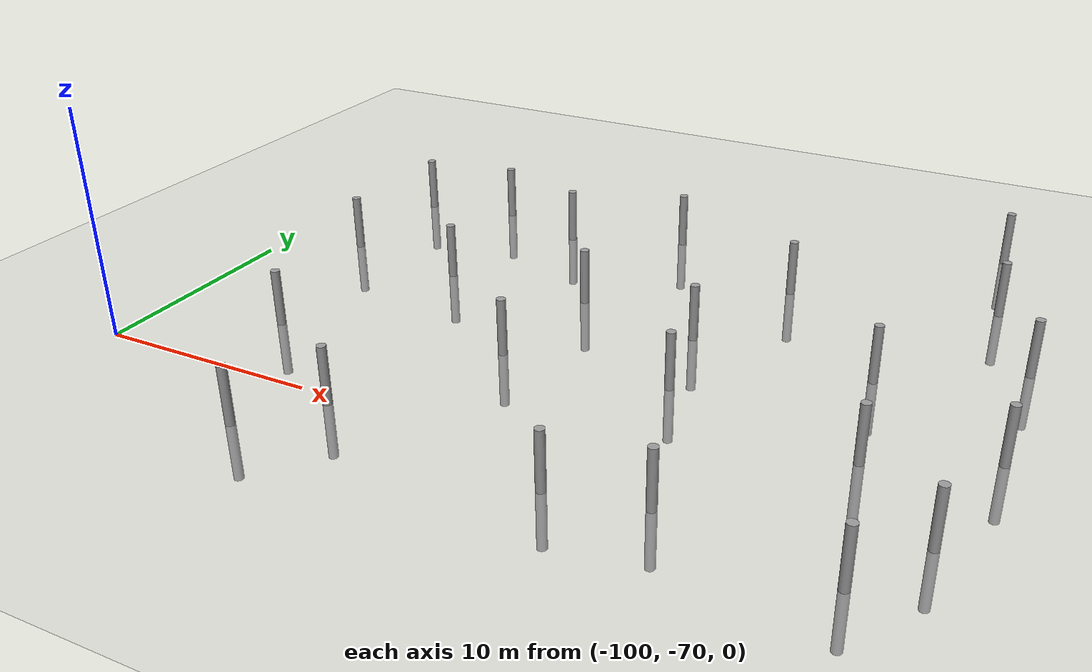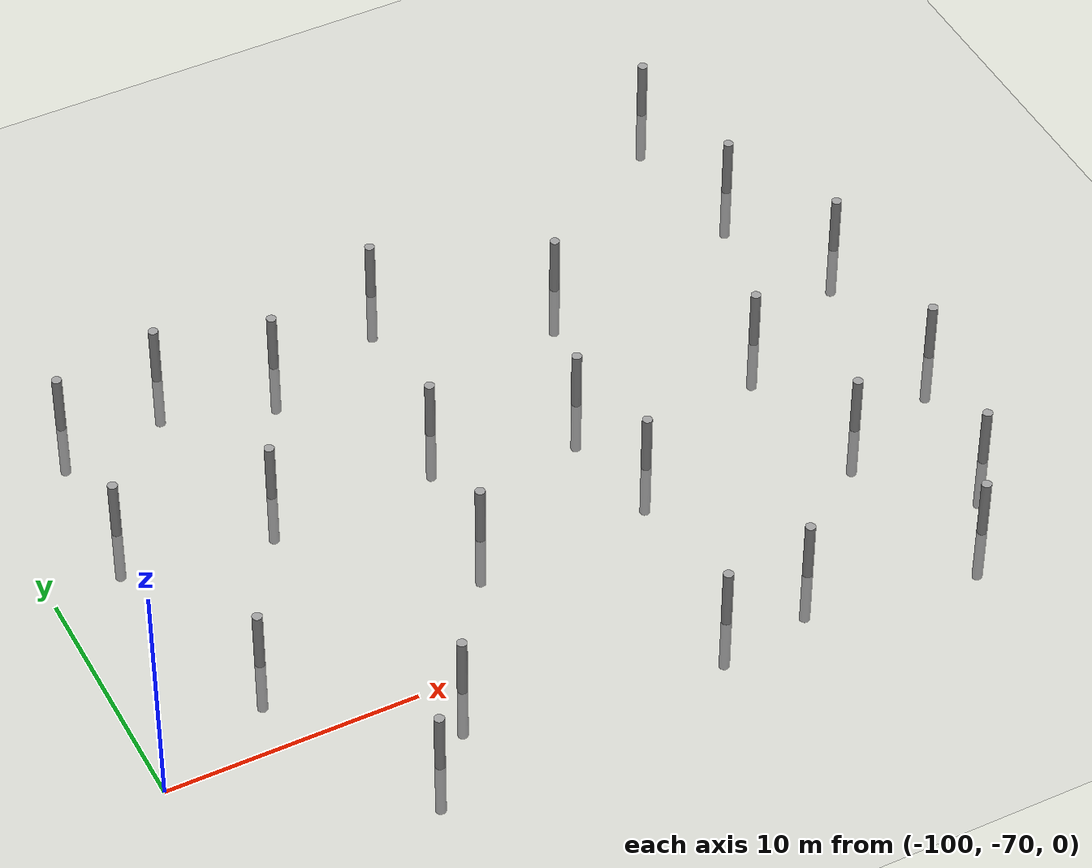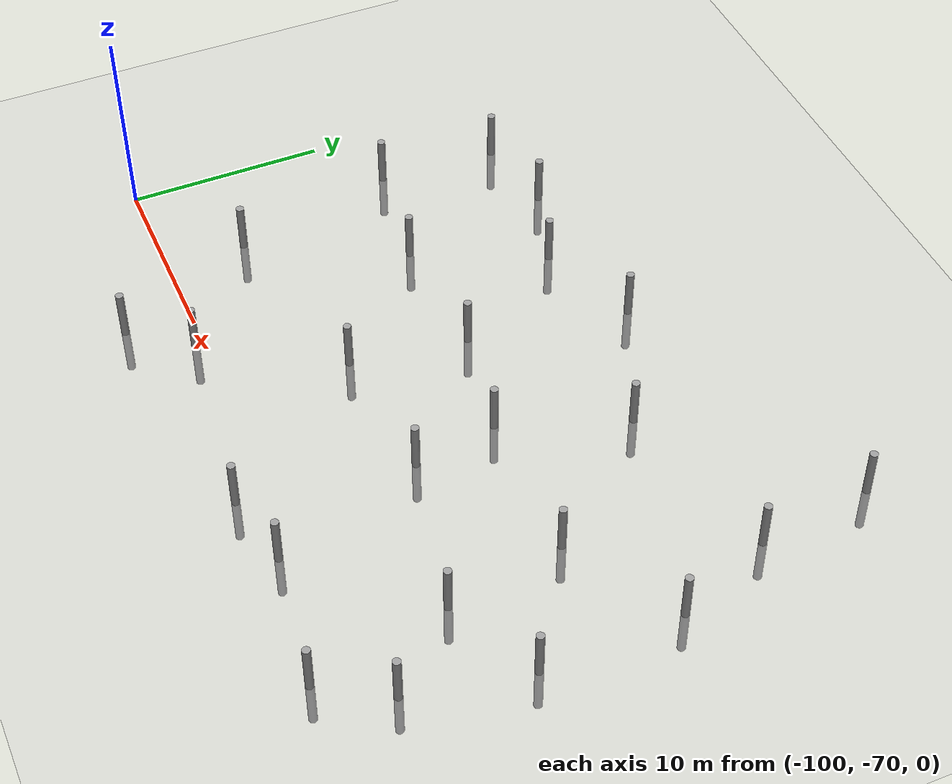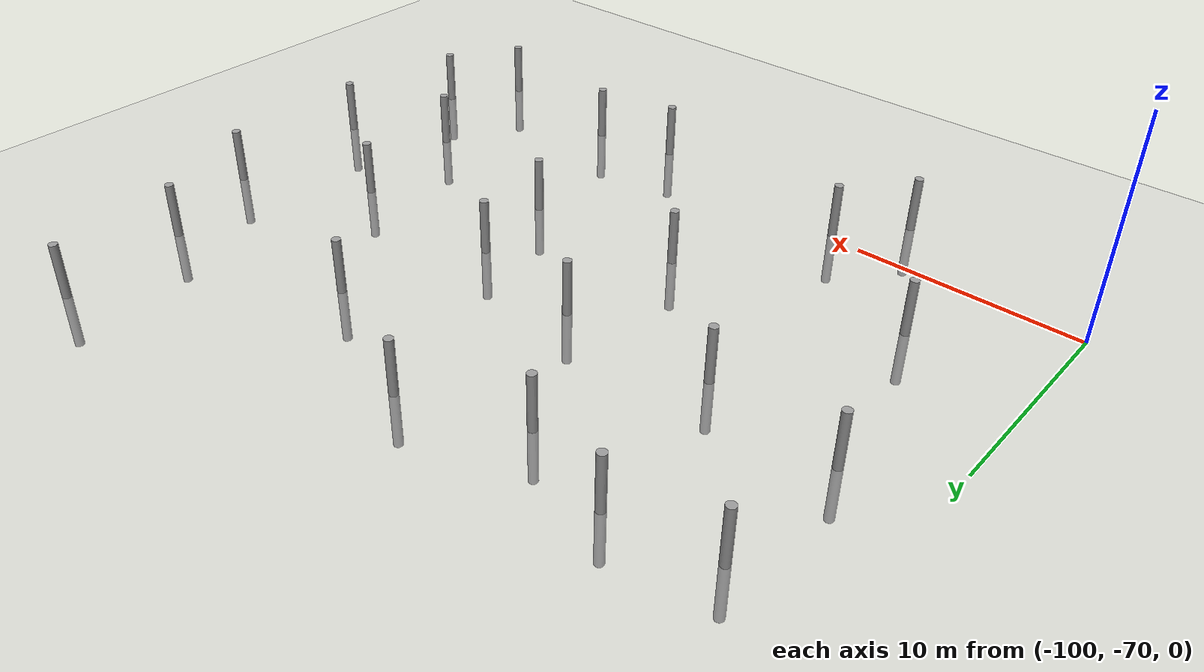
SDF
<sdf version="1.6">
 <world name="default">
  <model name="ground_plane">
   <static>1</static>
   <link name="link">
    <collision name="collision">
     <geometry><plane><normal>0 0 1</normal><size>100 100</size></plane></geometry>
     <surface><friction><ode><mu>100</mu><mu2>50</mu2></ode></friction></surface>
    </collision>
    <visual name="visual">
     <cast_shadows>0</cast_shadows>
     <geometry><plane><normal>0 0 1</normal><size>100 100</size></plane></geometry>
     <material>
      <script><uri>file://media/materials/scripts/gazebo.material</uri><name>Gazebo/Grey</name></script>
     </material>
    </visual>
   </link>
  </model>
  <model name="empty_pillars_7">
   <model name="empty_pillar_clone_53">
    <link name="link">
     <inertial>
      <mass>1</mass>
      <inertia><ixx>0.145833</ixx><ixy>0</ixy><ixz>0</ixz><iyy>0.145833</iyy><iyz>0</iyz><izz>0.125</izz></inertia>
     </inertial>
     <visual name="visual">
      <geometry><cylinder><radius>0.2</radius><length>5</length></cylinder></geometry>
      <material>
       <script><name>Gazebo/Grey</name><uri>file://media/materials/scripts/gazebo.material</uri></script>
       <shader type="vertex"><normal_map>__default__</normal_map></shader>
       <ambient>0.3 0.3 0.3 1</ambient>
       <diffuse>0.7 0.7 0.7 1</diffuse>
       <specular>0.01 0.01 0.01 1</specular>
       <emissive>0 0 0 1</emissive>
      </material>
     </visual>
     <collision name="collision">
      <geometry><cylinder><radius>0.05</radius><length>5</length></cylinder></geometry>
      <surface>
       <friction>
        <ode><mu>1</mu><mu2>1</mu2><fdir1>0 0 0</fdir1><slip1>0</slip1><slip2>0</slip2></ode>
        <torsional>
         <coefficient>1</coefficient>
         <patch_radius>0</patch_radius>
         <surface_radius>0</surface_radius>
         <use_patch_radius>1</use_patch_radius>
         <ode><slip>0</slip></ode>
        </torsional>
       </friction>
       <bounce><restitution_coefficient>0</restitution_coefficient><threshold>1e+06</threshold></bounce>
       <contact>
        <collide_without_contact>0</collide_without_contact>
        <collide_without_contact_bitmask>1</collide_without_contact_bitmask>
        <collide_bitmask>1</collide_bitmask>
        <ode>
         <soft_cfm>0</soft_cfm>
         <soft_erp>0.2</soft_erp>
         <kp>1e+13</kp>
         <kd>1</kd>
         <max_vel>0.01</max_vel>
         <min_depth>0</min_depth>
        </ode>
        <bullet>
         <split_impulse>1</split_impulse>
         <split_impulse_penetration_threshold>-0.01</split_impulse_penetration_threshold>
         <soft_cfm>0</soft_cfm>
         <soft_erp>0.2</soft_erp>
         <kp>1e+13</kp>
         <kd>1</kd>
        </bullet>
       </contact>
      </surface>
     </collision>
    </link>
    <static>0</static>
    <pose>7.32522 -23.3523 0 0 -0 0</pose>
   </model>
   <static>0</static>
   <pose>-74.8311 -21.7347 0 0 -0 0</pose>
  </model>
  <model name="empty_pillars_11">
   <link name="link">
    <inertial>
     <mass>1</mass>
     <inertia><ixx>0.145833</ixx><ixy>0</ixy><ixz>0</ixz><iyy>0.145833</iyy><iyz>0</iyz><izz>0.125</izz></inertia>
    </inertial>
    <visual name="visual">
     <geometry><cylinder><radius>0.2</radius><length>5</length></cylinder></geometry>
     <material>
      <script><name>Gazebo/Grey</name><uri>file://media/materials/scripts/gazebo.material</uri></script>
      <shader type="vertex"><normal_map>__default__</normal_map></shader>
      <ambient>0.3 0.3 0.3 1</ambient>
      <diffuse>0.7 0.7 0.7 1</diffuse>
      <specular>0.01 0.01 0.01 1</specular>
      <emissive>0 0 0 1</emissive>
     </material>
    </visual>
    <collision name="collision">
     <geometry><cylinder><radius>0.05</radius><length>5</length></cylinder></geometry>
     <surface>
      <friction>
       <ode><mu>1</mu><mu2>1</mu2><fdir1>0 0 0</fdir1><slip1>0</slip1><slip2>0</slip2></ode>
       <torsional>
        <coefficient>1</coefficient>
        <patch_radius>0</patch_radius>
        <surface_radius>0</surface_radius>
        <use_patch_radius>1</use_patch_radius>
        <ode><slip>0</slip></ode>
       </torsional>
      </friction>
      <bounce><restitution_coefficient>0</restitution_coefficient><threshold>1e+06</threshold></bounce>
      <contact>
       <collide_without_contact>0</collide_without_contact>
       <collide_without_contact_bitmask>1</collide_without_contact_bitmask>
       <collide_bitmask>1</collide_bitmask>
       <ode>
        <soft_cfm>0</soft_cfm>
        <soft_erp>0.2</soft_erp>
        <kp>1e+13</kp>
        <kd>1</kd>
        <max_vel>0.01</max_vel>
        <min_depth>0</min_depth>
       </ode>
       <bullet>
        <split_impulse>1</split_impulse>
        <split_impulse_penetration_threshold>-0.01</split_impulse_penetration_threshold>
        <soft_cfm>0</soft_cfm>
        <soft_erp>0.2</soft_erp>
        <kp>1e+13</kp>
        <kd>1</kd>
       </bullet>
      </contact>
     </surface>
    </collision>
   </link>
   <model name="empty_pillar">
    <link name="link">
     <inertial>
      <mass>1</mass>
      <inertia><ixx>0.145833</ixx><ixy>0</ixy><ixz>0</ixz><iyy>0.145833</iyy><iyz>0</iyz><izz>0.125</izz></inertia>
     </inertial>
     <visual name="visual">
      <geometry><cylinder><radius>0.2</radius><length>5</length></cylinder></geometry>
      <material>
       <script><name>Gazebo/Grey</name><uri>file://media/materials/scripts/gazebo.material</uri></script>
       <shader type="vertex"><normal_map>__default__</normal_map></shader>
       <ambient>0.3 0.3 0.3 1</ambient>
       <diffuse>0.7 0.7 0.7 1</diffuse>
       <specular>0.01 0.01 0.01 1</specular>
       <emissive>0 0 0 1</emissive>
      </material>
     </visual>
     <collision name="collision">
      <geometry><cylinder><radius>0.05</radius><length>5</length></cylinder></geometry>
      <surface>
       <friction>
        <ode><mu>1</mu><mu2>1</mu2><fdir1>0 0 0</fdir1><slip1>0</slip1><slip2>0</slip2></ode>
        <torsional>
         <coefficient>1</coefficient>
         <patch_radius>0</patch_radius>
         <surface_radius>0</surface_radius>
         <use_patch_radius>1</use_patch_radius>
         <ode><slip>0</slip></ode>
        </torsional>
       </friction>
       <bounce><restitution_coefficient>0</restitution_coefficient><threshold>1e+06</threshold></bounce>
       <contact>
        <collide_without_contact>0</collide_without_contact>
        <collide_without_contact_bitmask>1</collide_without_contact_bitmask>
        <collide_bitmask>1</collide_bitmask>
        <ode>
         <soft_cfm>0</soft_cfm>
         <soft_erp>0.2</soft_erp>
         <kp>1e+13</kp>
         <kd>1</kd>
         <max_vel>0.01</max_vel>
         <min_depth>0</min_depth>
        </ode>
        <bullet>
         <split_impulse>1</split_impulse>
         <split_impulse_penetration_threshold>-0.01</split_impulse_penetration_threshold>
         <soft_cfm>0</soft_cfm>
         <soft_erp>0.2</soft_erp>
         <kp>1e+13</kp>
         <kd>1</kd>
        </bullet>
       </contact>
      </surface>
     </collision>
    </link>
    <static>0</static>
    <pose>-3.84527 -0.717439 0 0 -0 0</pose>
   </model>
   <model name="empty_pillar_clone_1">
    <link name="link">
     <inertial>
      <mass>1</mass>
      <inertia><ixx>0.145833</ixx><ixy>0</ixy><ixz>0</ixz><iyy>0.145833</iyy><iyz>0</iyz><izz>0.125</izz></inertia>
     </inertial>
     <visual name="visual">
      <geometry><cylinder><radius>0.2</radius><length>5</length></cylinder></geometry>
      <material>
       <script><name>Gazebo/Grey</name><uri>file://media/materials/scripts/gazebo.material</uri></script>
       <shader type="vertex"><normal_map>__default__</normal_map></shader>
       <ambient>0.3 0.3 0.3 1</ambient>
       <diffuse>0.7 0.7 0.7 1</diffuse>
       <specular>0.01 0.01 0.01 1</specular>
       <emissive>0 0 0 1</emissive>
      </material>
     </visual>
     <collision name="collision">
      <geometry><cylinder><radius>0.05</radius><length>5</length></cylinder></geometry>
      <surface>
       <friction>
        <ode><mu>1</mu><mu2>1</mu2><fdir1>0 0 0</fdir1><slip1>0</slip1><slip2>0</slip2></ode>
        <torsional>
         <coefficient>1</coefficient>
         <patch_radius>0</patch_radius>
         <surface_radius>0</surface_radius>
         <use_patch_radius>1</use_patch_radius>
         <ode><slip>0</slip></ode>
        </torsional>
       </friction>
       <bounce><restitution_coefficient>0</restitution_coefficient><threshold>1e+06</threshold></bounce>
       <contact>
        <collide_without_contact>0</collide_without_contact>
        <collide_without_contact_bitmask>1</collide_without_contact_bitmask>
        <collide_bitmask>1</collide_bitmask>
        <ode>
         <soft_cfm>0</soft_cfm>
         <soft_erp>0.2</soft_erp>
         <kp>1e+13</kp>
         <kd>1</kd>
         <max_vel>0.01</max_vel>
         <min_depth>0</min_depth>
        </ode>
        <bullet>
         <split_impulse>1</split_impulse>
         <split_impulse_penetration_threshold>-0.01</split_impulse_penetration_threshold>
         <soft_cfm>0</soft_cfm>
         <soft_erp>0.2</soft_erp>
         <kp>1e+13</kp>
         <kd>1</kd>
        </bullet>
       </contact>
      </surface>
     </collision>
    </link>
    <static>0</static>
    <pose>8.92248 2.14838 0 0 -0 0</pose>
   </model>
   <model name="empty_pillar_clone_14">
    <link name="link">
     <inertial>
      <mass>1</mass>
      <inertia><ixx>0.145833</ixx><ixy>0</ixy><ixz>0</ixz><iyy>0.145833</iyy><iyz>0</iyz><izz>0.125</izz></inertia>
     </inertial>
     <visual name="visual">
      <geometry><cylinder><radius>0.2</radius><length>5</length></cylinder></geometry>
      <material>
       <script><name>Gazebo/Grey</name><uri>file://media/materials/scripts/gazebo.material</uri></script>
       <shader type="vertex"><normal_map>__default__</normal_map></shader>
       <ambient>0.3 0.3 0.3 1</ambient>
       <diffuse>0.7 0.7 0.7 1</diffuse>
       <specular>0.01 0.01 0.01 1</specular>
       <emissive>0 0 0 1</emissive>
      </material>
     </visual>
     <collision name="collision">
      <geometry><cylinder><radius>0.05</radius><length>5</length></cylinder></geometry>
      <surface>
       <friction>
        <ode><mu>1</mu><mu2>1</mu2><fdir1>0 0 0</fdir1><slip1>0</slip1><slip2>0</slip2></ode>
        <torsional>
         <coefficient>1</coefficient>
         <patch_radius>0</patch_radius>
         <surface_radius>0</surface_radius>
         <use_patch_radius>1</use_patch_radius>
         <ode><slip>0</slip></ode>
        </torsional>
       </friction>
       <bounce><restitution_coefficient>0</restitution_coefficient><threshold>1e+06</threshold></bounce>
       <contact>
        <collide_without_contact>0</collide_without_contact>
        <collide_without_contact_bitmask>1</collide_without_contact_bitmask>
        <collide_bitmask>1</collide_bitmask>
        <ode>
         <soft_cfm>0</soft_cfm>
         <soft_erp>0.2</soft_erp>
         <kp>1e+13</kp>
         <kd>1</kd>
         <max_vel>0.01</max_vel>
         <min_depth>0</min_depth>
        </ode>
        <bullet>
         <split_impulse>1</split_impulse>
         <split_impulse_penetration_threshold>-0.01</split_impulse_penetration_threshold>
         <soft_cfm>0</soft_cfm>
         <soft_erp>0.2</soft_erp>
         <kp>1e+13</kp>
         <kd>1</kd>
        </bullet>
       </contact>
      </surface>
     </collision>
    </link>
    <static>0</static>
    <pose>-14.0146 0.646152 0 0 -0 0</pose>
   </model>
   <model name="empty_pillar_clone_16">
    <link name="link">
     <inertial>
      <mass>1</mass>
      <inertia><ixx>0.145833</ixx><ixy>0</ixy><ixz>0</ixz><iyy>0.145833</iyy><iyz>0</iyz><izz>0.125</izz></inertia>
     </inertial>
     <visual name="visual">
      <geometry><cylinder><radius>0.2</radius><length>5</length></cylinder></geometry>
      <material>
       <script><name>Gazebo/Grey</name><uri>file://media/materials/scripts/gazebo.material</uri></script>
       <shader type="vertex"><normal_map>__default__</normal_map></shader>
       <ambient>0.3 0.3 0.3 1</ambient>
       <diffuse>0.7 0.7 0.7 1</diffuse>
       <specular>0.01 0.01 0.01 1</specular>
       <emissive>0 0 0 1</emissive>
      </material>
     </visual>
     <collision name="collision">
      <geometry><cylinder><radius>0.05</radius><length>5</length></cylinder></geometry>
      <surface>
       <friction>
        <ode><mu>1</mu><mu2>1</mu2><fdir1>0 0 0</fdir1><slip1>0</slip1><slip2>0</slip2></ode>
        <torsional>
         <coefficient>1</coefficient>
         <patch_radius>0</patch_radius>
         <surface_radius>0</surface_radius>
         <use_patch_radius>1</use_patch_radius>
         <ode><slip>0</slip></ode>
        </torsional>
       </friction>
       <bounce><restitution_coefficient>0</restitution_coefficient><threshold>1e+06</threshold></bounce>
       <contact>
        <collide_without_contact>0</collide_without_contact>
        <collide_without_contact_bitmask>1</collide_without_contact_bitmask>
        <collide_bitmask>1</collide_bitmask>
        <ode>
         <soft_cfm>0</soft_cfm>
         <soft_erp>0.2</soft_erp>
         <kp>1e+13</kp>
         <kd>1</kd>
         <max_vel>0.01</max_vel>
         <min_depth>0</min_depth>
        </ode>
        <bullet>
         <split_impulse>1</split_impulse>
         <split_impulse_penetration_threshold>-0.01</split_impulse_penetration_threshold>
         <soft_cfm>0</soft_cfm>
         <soft_erp>0.2</soft_erp>
         <kp>1e+13</kp>
         <kd>1</kd>
        </bullet>
       </contact>
      </surface>
     </collision>
    </link>
    <static>0</static>
    <pose>-9.20789 13.0504 0 0 -0 0</pose>
   </model>
   <model name="empty_pillar_clone_17">
    <link name="link">
     <inertial>
      <mass>1</mass>
      <inertia><ixx>0.145833</ixx><ixy>0</ixy><ixz>0</ixz><iyy>0.145833</iyy><iyz>0</iyz><izz>0.125</izz></inertia>
     </inertial>
     <visual name="visual">
      <geometry><cylinder><radius>0.2</radius><length>5</length></cylinder></geometry>
      <material>
       <script><name>Gazebo/Grey</name><uri>file://media/materials/scripts/gazebo.material</uri></script>
       <shader type="vertex"><normal_map>__default__</normal_map></shader>
       <ambient>0.3 0.3 0.3 1</ambient>
       <diffuse>0.7 0.7 0.7 1</diffuse>
       <specular>0.01 0.01 0.01 1</specular>
       <emissive>0 0 0 1</emissive>
      </material>
     </visual>
     <collision name="collision">
      <geometry><cylinder><radius>0.05</radius><length>5</length></cylinder></geometry>
      <surface>
       <friction>
        <ode><mu>1</mu><mu2>1</mu2><fdir1>0 0 0</fdir1><slip1>0</slip1><slip2>0</slip2></ode>
        <torsional>
         <coefficient>1</coefficient>
         <patch_radius>0</patch_radius>
         <surface_radius>0</surface_radius>
         <use_patch_radius>1</use_patch_radius>
         <ode><slip>0</slip></ode>
        </torsional>
       </friction>
       <bounce><restitution_coefficient>0</restitution_coefficient><threshold>1e+06</threshold></bounce>
       <contact>
        <collide_without_contact>0</collide_without_contact>
        <collide_without_contact_bitmask>1</collide_without_contact_bitmask>
        <collide_bitmask>1</collide_bitmask>
        <ode>
         <soft_cfm>0</soft_cfm>
         <soft_erp>0.2</soft_erp>
         <kp>1e+13</kp>
         <kd>1</kd>
         <max_vel>0.01</max_vel>
         <min_depth>0</min_depth>
        </ode>
        <bullet>
         <split_impulse>1</split_impulse>
         <split_impulse_penetration_threshold>-0.01</split_impulse_penetration_threshold>
         <soft_cfm>0</soft_cfm>
         <soft_erp>0.2</soft_erp>
         <kp>1e+13</kp>
         <kd>1</kd>
        </bullet>
       </contact>
      </surface>
     </collision>
    </link>
    <static>0</static>
    <pose>-16.0449 12.755 0 0 -0 0</pose>
   </model>
   <model name="empty_pillar_clone_18">
    <link name="link">
     <inertial>
      <mass>1</mass>
      <inertia><ixx>0.145833</ixx><ixy>0</ixy><ixz>0</ixz><iyy>0.145833</iyy><iyz>0</iyz><izz>0.125</izz></inertia>
     </inertial>
     <visual name="visual">
      <geometry><cylinder><radius>0.2</radius><length>5</length></cylinder></geometry>
      <material>
       <script><name>Gazebo/Grey</name><uri>file://media/materials/scripts/gazebo.material</uri></script>
       <shader type="vertex"><normal_map>__default__</normal_map></shader>
       <ambient>0.3 0.3 0.3 1</ambient>
       <diffuse>0.7 0.7 0.7 1</diffuse>
       <specular>0.01 0.01 0.01 1</specular>
       <emissive>0 0 0 1</emissive>
      </material>
     </visual>
     <collision name="collision">
      <geometry><cylinder><radius>0.05</radius><length>5</length></cylinder></geometry>
      <surface>
       <friction>
        <ode><mu>1</mu><mu2>1</mu2><fdir1>0 0 0</fdir1><slip1>0</slip1><slip2>0</slip2></ode>
        <torsional>
         <coefficient>1</coefficient>
         <patch_radius>0</patch_radius>
         <surface_radius>0</surface_radius>
         <use_patch_radius>1</use_patch_radius>
         <ode><slip>0</slip></ode>
        </torsional>
       </friction>
       <bounce><restitution_coefficient>0</restitution_coefficient><threshold>1e+06</threshold></bounce>
       <contact>
        <collide_without_contact>0</collide_without_contact>
        <collide_without_contact_bitmask>1</collide_without_contact_bitmask>
        <collide_bitmask>1</collide_bitmask>
        <ode>
         <soft_cfm>0</soft_cfm>
         <soft_erp>0.2</soft_erp>
         <kp>1e+13</kp>
         <kd>1</kd>
         <max_vel>0.01</max_vel>
         <min_depth>0</min_depth>
        </ode>
        <bullet>
         <split_impulse>1</split_impulse>
         <split_impulse_penetration_threshold>-0.01</split_impulse_penetration_threshold>
         <soft_cfm>0</soft_cfm>
         <soft_erp>0.2</soft_erp>
         <kp>1e+13</kp>
         <kd>1</kd>
        </bullet>
       </contact>
      </surface>
     </collision>
    </link>
    <static>0</static>
    <pose>-20.0146 5.15966 0 0 -0 0</pose>
   </model>
   <model name="empty_pillar_clone_19">
    <link name="link">
     <inertial>
      <mass>1</mass>
      <inertia><ixx>0.145833</ixx><ixy>0</ixy><ixz>0</ixz><iyy>0.145833</iyy><iyz>0</iyz><izz>0.125</izz></inertia>
     </inertial>
     <visual name="visual">
      <geometry><cylinder><radius>0.2</radius><length>5</length></cylinder></geometry>
      <material>
       <script><name>Gazebo/Grey</name><uri>file://media/materials/scripts/gazebo.material</uri></script>
       <shader type="vertex"><normal_map>__default__</normal_map></shader>
       <ambient>0.3 0.3 0.3 1</ambient>
       <diffuse>0.7 0.7 0.7 1</diffuse>
       <specular>0.01 0.01 0.01 1</specular>
       <emissive>0 0 0 1</emissive>
      </material>
     </visual>
     <collision name="collision">
      <geometry><cylinder><radius>0.05</radius><length>5</length></cylinder></geometry>
      <surface>
       <friction>
        <ode><mu>1</mu><mu2>1</mu2><fdir1>0 0 0</fdir1><slip1>0</slip1><slip2>0</slip2></ode>
        <torsional>
         <coefficient>1</coefficient>
         <patch_radius>0</patch_radius>
         <surface_radius>0</surface_radius>
         <use_patch_radius>1</use_patch_radius>
         <ode><slip>0</slip></ode>
        </torsional>
       </friction>
       <bounce><restitution_coefficient>0</restitution_coefficient><threshold>1e+06</threshold></bounce>
       <contact>
        <collide_without_contact>0</collide_without_contact>
        <collide_without_contact_bitmask>1</collide_without_contact_bitmask>
        <collide_bitmask>1</collide_bitmask>
        <ode>
         <soft_cfm>0</soft_cfm>
         <soft_erp>0.2</soft_erp>
         <kp>1e+13</kp>
         <kd>1</kd>
         <max_vel>0.01</max_vel>
         <min_depth>0</min_depth>
        </ode>
        <bullet>
         <split_impulse>1</split_impulse>
         <split_impulse_penetration_threshold>-0.01</split_impulse_penetration_threshold>
         <soft_cfm>0</soft_cfm>
         <soft_erp>0.2</soft_erp>
         <kp>1e+13</kp>
         <kd>1</kd>
        </bullet>
       </contact>
      </surface>
     </collision>
    </link>
    <static>0</static>
    <pose>-10.0146 7.15966 0 0 -0 0</pose>
   </model>
   <model name="empty_pillar_clone_2">
    <link name="link">
     <inertial>
      <mass>1</mass>
      <inertia><ixx>0.145833</ixx><ixy>0</ixy><ixz>0</ixz><iyy>0.145833</iyy><iyz>0</iyz><izz>0.125</izz></inertia>
     </inertial>
     <visual name="visual">
      <geometry><cylinder><radius>0.2</radius><length>5</length></cylinder></geometry>
      <material>
       <script><name>Gazebo/Grey</name><uri>file://media/materials/scripts/gazebo.material</uri></script>
       <shader type="vertex"><normal_map>__default__</normal_map></shader>
       <ambient>0.3 0.3 0.3 1</ambient>
       <diffuse>0.7 0.7 0.7 1</diffuse>
       <specular>0.01 0.01 0.01 1</specular>
       <emissive>0 0 0 1</emissive>
      </material>
     </visual>
     <collision name="collision">
      <geometry><cylinder><radius>0.05</radius><length>5</length></cylinder></geometry>
      <surface>
       <friction>
        <ode><mu>1</mu><mu2>1</mu2><fdir1>0 0 0</fdir1><slip1>0</slip1><slip2>0</slip2></ode>
        <torsional>
         <coefficient>1</coefficient>
         <patch_radius>0</patch_radius>
         <surface_radius>0</surface_radius>
         <use_patch_radius>1</use_patch_radius>
         <ode><slip>0</slip></ode>
        </torsional>
       </friction>
       <bounce><restitution_coefficient>0</restitution_coefficient><threshold>1e+06</threshold></bounce>
       <contact>
        <collide_without_contact>0</collide_without_contact>
        <collide_without_contact_bitmask>1</collide_without_contact_bitmask>
        <collide_bitmask>1</collide_bitmask>
        <ode>
         <soft_cfm>0</soft_cfm>
         <soft_erp>0.2</soft_erp>
         <kp>1e+13</kp>
         <kd>1</kd>
         <max_vel>0.01</max_vel>
         <min_depth>0</min_depth>
        </ode>
        <bullet>
         <split_impulse>1</split_impulse>
         <split_impulse_penetration_threshold>-0.01</split_impulse_penetration_threshold>
         <soft_cfm>0</soft_cfm>
         <soft_erp>0.2</soft_erp>
         <kp>1e+13</kp>
         <kd>1</kd>
        </bullet>
       </contact>
      </surface>
     </collision>
    </link>
    <static>0</static>
    <pose>6.92427 -1.06221 0 0 -0 0</pose>
   </model>
   <model name="empty_pillar_clone_20">
    <link name="link">
     <inertial>
      <mass>1</mass>
      <inertia><ixx>0.145833</ixx><ixy>0</ixy><ixz>0</ixz><iyy>0.145833</iyy><iyz>0</iyz><izz>0.125</izz></inertia>
     </inertial>
     <visual name="visual">
      <geometry><cylinder><radius>0.2</radius><length>5</length></cylinder></geometry>
      <material>
       <script><name>Gazebo/Grey</name><uri>file://media/materials/scripts/gazebo.material</uri></script>
       <shader type="vertex"><normal_map>__default__</normal_map></shader>
       <ambient>0.3 0.3 0.3 1</ambient>
       <diffuse>0.7 0.7 0.7 1</diffuse>
       <specular>0.01 0.01 0.01 1</specular>
       <emissive>0 0 0 1</emissive>
      </material>
     </visual>
     <collision name="collision">
      <geometry><cylinder><radius>0.05</radius><length>5</length></cylinder></geometry>
      <surface>
       <friction>
        <ode><mu>1</mu><mu2>1</mu2><fdir1>0 0 0</fdir1><slip1>0</slip1><slip2>0</slip2></ode>
        <torsional>
         <coefficient>1</coefficient>
         <patch_radius>0</patch_radius>
         <surface_radius>0</surface_radius>
         <use_patch_radius>1</use_patch_radius>
         <ode><slip>0</slip></ode>
        </torsional>
       </friction>
       <bounce><restitution_coefficient>0</restitution_coefficient><threshold>1e+06</threshold></bounce>
       <contact>
        <collide_without_contact>0</collide_without_contact>
        <collide_without_contact_bitmask>1</collide_without_contact_bitmask>
        <collide_bitmask>1</collide_bitmask>
        <ode>
         <soft_cfm>0</soft_cfm>
         <soft_erp>0.2</soft_erp>
         <kp>1e+13</kp>
         <kd>1</kd>
         <max_vel>0.01</max_vel>
         <min_depth>0</min_depth>
        </ode>
        <bullet>
         <split_impulse>1</split_impulse>
         <split_impulse_penetration_threshold>-0.01</split_impulse_penetration_threshold>
         <soft_cfm>0</soft_cfm>
         <soft_erp>0.2</soft_erp>
         <kp>1e+13</kp>
         <kd>1</kd>
        </bullet>
       </contact>
      </surface>
     </collision>
    </link>
    <static>0</static>
    <pose>-13.0146 19.1597 0 0 -0 0</pose>
   </model>
   <model name="empty_pillar_clone_21">
    <link name="link">
     <inertial>
      <mass>1</mass>
      <inertia><ixx>0.145833</ixx><ixy>0</ixy><ixz>0</ixz><iyy>0.145833</iyy><iyz>0</iyz><izz>0.125</izz></inertia>
     </inertial>
     <visual name="visual">
      <geometry><cylinder><radius>0.2</radius><length>5</length></cylinder></geometry>
      <material>
       <script><name>Gazebo/Grey</name><uri>file://media/materials/scripts/gazebo.material</uri></script>
       <shader type="vertex"><normal_map>__default__</normal_map></shader>
       <ambient>0.3 0.3 0.3 1</ambient>
       <diffuse>0.7 0.7 0.7 1</diffuse>
       <specular>0.01 0.01 0.01 1</specular>
       <emissive>0 0 0 1</emissive>
      </material>
     </visual>
     <collision name="collision">
      <geometry><cylinder><radius>0.05</radius><length>5</length></cylinder></geometry>
      <surface>
       <friction>
        <ode><mu>1</mu><mu2>1</mu2><fdir1>0 0 0</fdir1><slip1>0</slip1><slip2>0</slip2></ode>
        <torsional>
         <coefficient>1</coefficient>
         <patch_radius>0</patch_radius>
         <surface_radius>0</surface_radius>
         <use_patch_radius>1</use_patch_radius>
         <ode><slip>0</slip></ode>
        </torsional>
       </friction>
       <bounce><restitution_coefficient>0</restitution_coefficient><threshold>1e+06</threshold></bounce>
       <contact>
        <collide_without_contact>0</collide_without_contact>
        <collide_without_contact_bitmask>1</collide_without_contact_bitmask>
        <collide_bitmask>1</collide_bitmask>
        <ode>
         <soft_cfm>0</soft_cfm>
         <soft_erp>0.2</soft_erp>
         <kp>1e+13</kp>
         <kd>1</kd>
         <max_vel>0.01</max_vel>
         <min_depth>0</min_depth>
        </ode>
        <bullet>
         <split_impulse>1</split_impulse>
         <split_impulse_penetration_threshold>-0.01</split_impulse_penetration_threshold>
         <soft_cfm>0</soft_cfm>
         <soft_erp>0.2</soft_erp>
         <kp>1e+13</kp>
         <kd>1</kd>
        </bullet>
       </contact>
      </surface>
     </collision>
    </link>
    <static>0</static>
    <pose>-21.7273 19.7662 0 0 -0 0</pose>
   </model>
   <model name="empty_pillar_clone_22">
    <link name="link">
     <inertial>
      <mass>1</mass>
      <inertia><ixx>0.145833</ixx><ixy>0</ixy><ixz>0</ixz><iyy>0.145833</iyy><iyz>0</iyz><izz>0.125</izz></inertia>
     </inertial>
     <visual name="visual">
      <geometry><cylinder><radius>0.2</radius><length>5</length></cylinder></geometry>
      <material>
       <script><name>Gazebo/Grey</name><uri>file://media/materials/scripts/gazebo.material</uri></script>
       <shader type="vertex"><normal_map>__default__</normal_map></shader>
       <ambient>0.3 0.3 0.3 1</ambient>
       <diffuse>0.7 0.7 0.7 1</diffuse>
       <specular>0.01 0.01 0.01 1</specular>
       <emissive>0 0 0 1</emissive>
      </material>
     </visual>
     <collision name="collision">
      <geometry><cylinder><radius>0.05</radius><length>5</length></cylinder></geometry>
      <surface>
       <friction>
        <ode><mu>1</mu><mu2>1</mu2><fdir1>0 0 0</fdir1><slip1>0</slip1><slip2>0</slip2></ode>
        <torsional>
         <coefficient>1</coefficient>
         <patch_radius>0</patch_radius>
         <surface_radius>0</surface_radius>
         <use_patch_radius>1</use_patch_radius>
         <ode><slip>0</slip></ode>
        </torsional>
       </friction>
       <bounce><restitution_coefficient>0</restitution_coefficient><threshold>1e+06</threshold></bounce>
       <contact>
        <collide_without_contact>0</collide_without_contact>
        <collide_without_contact_bitmask>1</collide_without_contact_bitmask>
        <collide_bitmask>1</collide_bitmask>
        <ode>
         <soft_cfm>0</soft_cfm>
         <soft_erp>0.2</soft_erp>
         <kp>1e+13</kp>
         <kd>1</kd>
         <max_vel>0.01</max_vel>
         <min_depth>0</min_depth>
        </ode>
        <bullet>
         <split_impulse>1</split_impulse>
         <split_impulse_penetration_threshold>-0.01</split_impulse_penetration_threshold>
         <soft_cfm>0</soft_cfm>
         <soft_erp>0.2</soft_erp>
         <kp>1e+13</kp>
         <kd>1</kd>
        </bullet>
       </contact>
      </surface>
     </collision>
    </link>
    <static>0</static>
    <pose>-17.3667 20.5782 0 0 -0 0</pose>
   </model>
   <model name="empty_pillar_clone_23">
    <link name="link">
     <inertial>
      <mass>1</mass>
      <inertia><ixx>0.145833</ixx><ixy>0</ixy><ixz>0</ixz><iyy>0.145833</iyy><iyz>0</iyz><izz>0.125</izz></inertia>
     </inertial>
     <visual name="visual">
      <geometry><cylinder><radius>0.2</radius><length>5</length></cylinder></geometry>
      <material>
       <script><name>Gazebo/Grey</name><uri>file://media/materials/scripts/gazebo.material</uri></script>
       <shader type="vertex"><normal_map>__default__</normal_map></shader>
       <ambient>0.3 0.3 0.3 1</ambient>
       <diffuse>0.7 0.7 0.7 1</diffuse>
       <specular>0.01 0.01 0.01 1</specular>
       <emissive>0 0 0 1</emissive>
      </material>
     </visual>
     <collision name="collision">
      <geometry><cylinder><radius>0.05</radius><length>5</length></cylinder></geometry>
      <surface>
       <friction>
        <ode><mu>1</mu><mu2>1</mu2><fdir1>0 0 0</fdir1><slip1>0</slip1><slip2>0</slip2></ode>
        <torsional>
         <coefficient>1</coefficient>
         <patch_radius>0</patch_radius>
         <surface_radius>0</surface_radius>
         <use_patch_radius>1</use_patch_radius>
         <ode><slip>0</slip></ode>
        </torsional>
       </friction>
       <bounce><restitution_coefficient>0</restitution_coefficient><threshold>1e+06</threshold></bounce>
       <contact>
        <collide_without_contact>0</collide_without_contact>
        <collide_without_contact_bitmask>1</collide_without_contact_bitmask>
        <collide_bitmask>1</collide_bitmask>
        <ode>
         <soft_cfm>0</soft_cfm>
         <soft_erp>0.2</soft_erp>
         <kp>1e+13</kp>
         <kd>1</kd>
         <max_vel>0.01</max_vel>
         <min_depth>0</min_depth>
        </ode>
        <bullet>
         <split_impulse>1</split_impulse>
         <split_impulse_penetration_threshold>-0.01</split_impulse_penetration_threshold>
         <soft_cfm>0</soft_cfm>
         <soft_erp>0.2</soft_erp>
         <kp>1e+13</kp>
         <kd>1</kd>
        </bullet>
       </contact>
      </surface>
     </collision>
    </link>
    <static>0</static>
    <pose>-1.21984 18.1273 0 0 -0 0</pose>
   </model>
   <model name="empty_pillar_clone_24">
    <link name="link">
     <inertial>
      <mass>1</mass>
      <inertia><ixx>0.145833</ixx><ixy>0</ixy><ixz>0</ixz><iyy>0.145833</iyy><iyz>0</iyz><izz>0.125</izz></inertia>
     </inertial>
     <visual name="visual">
      <geometry><cylinder><radius>0.2</radius><length>5</length></cylinder></geometry>
      <material>
       <script><name>Gazebo/Grey</name><uri>file://media/materials/scripts/gazebo.material</uri></script>
       <shader type="vertex"><normal_map>__default__</normal_map></shader>
       <ambient>0.3 0.3 0.3 1</ambient>
       <diffuse>0.7 0.7 0.7 1</diffuse>
       <specular>0.01 0.01 0.01 1</specular>
       <emissive>0 0 0 1</emissive>
      </material>
     </visual>
     <collision name="collision">
      <geometry><cylinder><radius>0.05</radius><length>5</length></cylinder></geometry>
      <surface>
       <friction>
        <ode><mu>1</mu><mu2>1</mu2><fdir1>0 0 0</fdir1><slip1>0</slip1><slip2>0</slip2></ode>
        <torsional>
         <coefficient>1</coefficient>
         <patch_radius>0</patch_radius>
         <surface_radius>0</surface_radius>
         <use_patch_radius>1</use_patch_radius>
         <ode><slip>0</slip></ode>
        </torsional>
       </friction>
       <bounce><restitution_coefficient>0</restitution_coefficient><threshold>1e+06</threshold></bounce>
       <contact>
        <collide_without_contact>0</collide_without_contact>
        <collide_without_contact_bitmask>1</collide_without_contact_bitmask>
        <collide_bitmask>1</collide_bitmask>
        <ode>
         <soft_cfm>0</soft_cfm>
         <soft_erp>0.2</soft_erp>
         <kp>1e+13</kp>
         <kd>1</kd>
         <max_vel>0.01</max_vel>
         <min_depth>0</min_depth>
        </ode>
        <bullet>
         <split_impulse>1</split_impulse>
         <split_impulse_penetration_threshold>-0.01</split_impulse_penetration_threshold>
         <soft_cfm>0</soft_cfm>
         <soft_erp>0.2</soft_erp>
         <kp>1e+13</kp>
         <kd>1</kd>
        </bullet>
       </contact>
      </surface>
     </collision>
    </link>
    <static>0</static>
    <pose>-3.46957 11.9413 0 0 -0 0</pose>
   </model>
   <model name="empty_pillar_clone_25">
    <link name="link">
     <inertial>
      <mass>1</mass>
      <inertia><ixx>0.145833</ixx><ixy>0</ixy><ixz>0</ixz><iyy>0.145833</iyy><iyz>0</iyz><izz>0.125</izz></inertia>
     </inertial>
     <visual name="visual">
      <geometry><cylinder><radius>0.2</radius><length>5</length></cylinder></geometry>
      <material>
       <script><name>Gazebo/Grey</name><uri>file://media/materials/scripts/gazebo.material</uri></script>
       <shader type="vertex"><normal_map>__default__</normal_map></shader>
       <ambient>0.3 0.3 0.3 1</ambient>
       <diffuse>0.7 0.7 0.7 1</diffuse>
       <specular>0.01 0.01 0.01 1</specular>
       <emissive>0 0 0 1</emissive>
      </material>
     </visual>
     <collision name="collision">
      <geometry><cylinder><radius>0.05</radius><length>5</length></cylinder></geometry>
      <surface>
       <friction>
        <ode><mu>1</mu><mu2>1</mu2><fdir1>0 0 0</fdir1><slip1>0</slip1><slip2>0</slip2></ode>
        <torsional>
         <coefficient>1</coefficient>
         <patch_radius>0</patch_radius>
         <surface_radius>0</surface_radius>
         <use_patch_radius>1</use_patch_radius>
         <ode><slip>0</slip></ode>
        </torsional>
       </friction>
       <bounce><restitution_coefficient>0</restitution_coefficient><threshold>1e+06</threshold></bounce>
       <contact>
        <collide_without_contact>0</collide_without_contact>
        <collide_without_contact_bitmask>1</collide_without_contact_bitmask>
        <collide_bitmask>1</collide_bitmask>
        <ode>
         <soft_cfm>0</soft_cfm>
         <soft_erp>0.2</soft_erp>
         <kp>1e+13</kp>
         <kd>1</kd>
         <max_vel>0.01</max_vel>
         <min_depth>0</min_depth>
        </ode>
        <bullet>
         <split_impulse>1</split_impulse>
         <split_impulse_penetration_threshold>-0.01</split_impulse_penetration_threshold>
         <soft_cfm>0</soft_cfm>
         <soft_erp>0.2</soft_erp>
         <kp>1e+13</kp>
         <kd>1</kd>
        </bullet>
       </contact>
      </surface>
     </collision>
    </link>
    <static>0</static>
    <pose>-7.86239 21.1314 0 0 -0 0</pose>
   </model>
   <model name="empty_pillar_clone_26">
    <link name="link">
     <inertial>
      <mass>1</mass>
      <inertia><ixx>0.145833</ixx><ixy>0</ixy><ixz>0</ixz><iyy>0.145833</iyy><iyz>0</iyz><izz>0.125</izz></inertia>
     </inertial>
     <visual name="visual">
      <geometry><cylinder><radius>0.2</radius><length>5</length></cylinder></geometry>
      <material>
       <script><name>Gazebo/Grey</name><uri>file://media/materials/scripts/gazebo.material</uri></script>
       <shader type="vertex"><normal_map>__default__</normal_map></shader>
       <ambient>0.3 0.3 0.3 1</ambient>
       <diffuse>0.7 0.7 0.7 1</diffuse>
       <specular>0.01 0.01 0.01 1</specular>
       <emissive>0 0 0 1</emissive>
      </material>
     </visual>
     <collision name="collision">
      <geometry><cylinder><radius>0.05</radius><length>5</length></cylinder></geometry>
      <surface>
       <friction>
        <ode><mu>1</mu><mu2>1</mu2><fdir1>0 0 0</fdir1><slip1>0</slip1><slip2>0</slip2></ode>
        <torsional>
         <coefficient>1</coefficient>
         <patch_radius>0</patch_radius>
         <surface_radius>0</surface_radius>
         <use_patch_radius>1</use_patch_radius>
         <ode><slip>0</slip></ode>
        </torsional>
       </friction>
       <bounce><restitution_coefficient>0</restitution_coefficient><threshold>1e+06</threshold></bounce>
       <contact>
        <collide_without_contact>0</collide_without_contact>
        <collide_without_contact_bitmask>1</collide_without_contact_bitmask>
        <collide_bitmask>1</collide_bitmask>
        <ode>
         <soft_cfm>0</soft_cfm>
         <soft_erp>0.2</soft_erp>
         <kp>1e+13</kp>
         <kd>1</kd>
         <max_vel>0.01</max_vel>
         <min_depth>0</min_depth>
        </ode>
        <bullet>
         <split_impulse>1</split_impulse>
         <split_impulse_penetration_threshold>-0.01</split_impulse_penetration_threshold>
         <soft_cfm>0</soft_cfm>
         <soft_erp>0.2</soft_erp>
         <kp>1e+13</kp>
         <kd>1</kd>
        </bullet>
       </contact>
      </surface>
     </collision>
    </link>
    <static>0</static>
    <pose>7.70652 20.1444 0 0 -0 0</pose>
   </model>
   <model name="empty_pillar_clone_27">
    <link name="link">
     <inertial>
      <mass>1</mass>
      <inertia><ixx>0.145833</ixx><ixy>0</ixy><ixz>0</ixz><iyy>0.145833</iyy><iyz>0</iyz><izz>0.125</izz></inertia>
     </inertial>
     <visual name="visual">
      <geometry><cylinder><radius>0.2</radius><length>5</length></cylinder></geometry>
      <material>
       <script><name>Gazebo/Grey</name><uri>file://media/materials/scripts/gazebo.material</uri></script>
       <shader type="vertex"><normal_map>__default__</normal_map></shader>
       <ambient>0.3 0.3 0.3 1</ambient>
       <diffuse>0.7 0.7 0.7 1</diffuse>
       <specular>0.01 0.01 0.01 1</specular>
       <emissive>0 0 0 1</emissive>
      </material>
     </visual>
     <collision name="collision">
      <geometry><cylinder><radius>0.05</radius><length>5</length></cylinder></geometry>
      <surface>
       <friction>
        <ode><mu>1</mu><mu2>1</mu2><fdir1>0 0 0</fdir1><slip1>0</slip1><slip2>0</slip2></ode>
        <torsional>
         <coefficient>1</coefficient>
         <patch_radius>0</patch_radius>
         <surface_radius>0</surface_radius>
         <use_patch_radius>1</use_patch_radius>
         <ode><slip>0</slip></ode>
        </torsional>
       </friction>
       <bounce><restitution_coefficient>0</restitution_coefficient><threshold>1e+06</threshold></bounce>
       <contact>
        <collide_without_contact>0</collide_without_contact>
        <collide_without_contact_bitmask>1</collide_without_contact_bitmask>
        <collide_bitmask>1</collide_bitmask>
        <ode>
         <soft_cfm>0</soft_cfm>
         <soft_erp>0.2</soft_erp>
         <kp>1e+13</kp>
         <kd>1</kd>
         <max_vel>0.01</max_vel>
         <min_depth>0</min_depth>
        </ode>
        <bullet>
         <split_impulse>1</split_impulse>
         <split_impulse_penetration_threshold>-0.01</split_impulse_penetration_threshold>
         <soft_cfm>0</soft_cfm>
         <soft_erp>0.2</soft_erp>
         <kp>1e+13</kp>
         <kd>1</kd>
        </bullet>
       </contact>
      </surface>
     </collision>
    </link>
    <static>0</static>
    <pose>4.32163 11.823 0 0 -0 0</pose>
   </model>
   <model name="empty_pillar_clone_29">
    <link name="link">
     <inertial>
      <mass>1</mass>
      <inertia><ixx>0.145833</ixx><ixy>0</ixy><ixz>0</ixz><iyy>0.145833</iyy><iyz>0</iyz><izz>0.125</izz></inertia>
     </inertial>
     <visual name="visual">
      <geometry><cylinder><radius>0.2</radius><length>5</length></cylinder></geometry>
      <material>
       <script><name>Gazebo/Grey</name><uri>file://media/materials/scripts/gazebo.material</uri></script>
       <shader type="vertex"><normal_map>__default__</normal_map></shader>
       <ambient>0.3 0.3 0.3 1</ambient>
       <diffuse>0.7 0.7 0.7 1</diffuse>
       <specular>0.01 0.01 0.01 1</specular>
       <emissive>0 0 0 1</emissive>
      </material>
     </visual>
     <collision name="collision">
      <geometry><cylinder><radius>0.05</radius><length>5</length></cylinder></geometry>
      <surface>
       <friction>
        <ode><mu>1</mu><mu2>1</mu2><fdir1>0 0 0</fdir1><slip1>0</slip1><slip2>0</slip2></ode>
        <torsional>
         <coefficient>1</coefficient>
         <patch_radius>0</patch_radius>
         <surface_radius>0</surface_radius>
         <use_patch_radius>1</use_patch_radius>
         <ode><slip>0</slip></ode>
        </torsional>
       </friction>
       <bounce><restitution_coefficient>0</restitution_coefficient><threshold>1e+06</threshold></bounce>
       <contact>
        <collide_without_contact>0</collide_without_contact>
        <collide_without_contact_bitmask>1</collide_without_contact_bitmask>
        <collide_bitmask>1</collide_bitmask>
        <ode>
         <soft_cfm>0</soft_cfm>
         <soft_erp>0.2</soft_erp>
         <kp>1e+13</kp>
         <kd>1</kd>
         <max_vel>0.01</max_vel>
         <min_depth>0</min_depth>
        </ode>
        <bullet>
         <split_impulse>1</split_impulse>
         <split_impulse_penetration_threshold>-0.01</split_impulse_penetration_threshold>
         <soft_cfm>0</soft_cfm>
         <soft_erp>0.2</soft_erp>
         <kp>1e+13</kp>
         <kd>1</kd>
        </bullet>
       </contact>
      </surface>
     </collision>
    </link>
    <static>0</static>
    <pose>10.08 8.0876 0 0 -0 0</pose>
   </model>
   <model name="empty_pillar_clone_38">
    <link name="link">
     <inertial>
      <mass>1</mass>
      <inertia><ixx>0.145833</ixx><ixy>0</ixy><ixz>0</ixz><iyy>0.145833</iyy><iyz>0</iyz><izz>0.125</izz></inertia>
     </inertial>
     <visual name="visual">
      <geometry><cylinder><radius>0.2</radius><length>5</length></cylinder></geometry>
      <material>
       <script><name>Gazebo/Grey</name><uri>file://media/materials/scripts/gazebo.material</uri></script>
       <shader type="vertex"><normal_map>__default__</normal_map></shader>
       <ambient>0.3 0.3 0.3 1</ambient>
       <diffuse>0.7 0.7 0.7 1</diffuse>
       <specular>0.01 0.01 0.01 1</specular>
       <emissive>0 0 0 1</emissive>
      </material>
     </visual>
     <collision name="collision">
      <geometry><cylinder><radius>0.05</radius><length>5</length></cylinder></geometry>
      <surface>
       <friction>
        <ode><mu>1</mu><mu2>1</mu2><fdir1>0 0 0</fdir1><slip1>0</slip1><slip2>0</slip2></ode>
        <torsional>
         <coefficient>1</coefficient>
         <patch_radius>0</patch_radius>
         <surface_radius>0</surface_radius>
         <use_patch_radius>1</use_patch_radius>
         <ode><slip>0</slip></ode>
        </torsional>
       </friction>
       <bounce><restitution_coefficient>0</restitution_coefficient><threshold>1e+06</threshold></bounce>
       <contact>
        <collide_without_contact>0</collide_without_contact>
        <collide_without_contact_bitmask>1</collide_without_contact_bitmask>
        <collide_bitmask>1</collide_bitmask>
        <ode>
         <soft_cfm>0</soft_cfm>
         <soft_erp>0.2</soft_erp>
         <kp>1e+13</kp>
         <kd>1</kd>
         <max_vel>0.01</max_vel>
         <min_depth>0</min_depth>
        </ode>
        <bullet>
         <split_impulse>1</split_impulse>
         <split_impulse_penetration_threshold>-0.01</split_impulse_penetration_threshold>
         <soft_cfm>0</soft_cfm>
         <soft_erp>0.2</soft_erp>
         <kp>1e+13</kp>
         <kd>1</kd>
        </bullet>
       </contact>
      </surface>
     </collision>
    </link>
    <static>0</static>
    <pose>-16.33 -2.21607 0 0 -0 0</pose>
   </model>
   <model name="empty_pillar_clone_49">
    <link name="link">
     <inertial>
      <mass>1</mass>
      <inertia><ixx>0.145833</ixx><ixy>0</ixy><ixz>0</ixz><iyy>0.145833</iyy><iyz>0</iyz><izz>0.125</izz></inertia>
     </inertial>
     <visual name="visual">
      <geometry><cylinder><radius>0.2</radius><length>5</length></cylinder></geometry>
      <material>
       <script><name>Gazebo/Grey</name><uri>file://media/materials/scripts/gazebo.material</uri></script>
       <shader type="vertex"><normal_map>__default__</normal_map></shader>
       <ambient>0.3 0.3 0.3 1</ambient>
       <diffuse>0.7 0.7 0.7 1</diffuse>
       <specular>0.01 0.01 0.01 1</specular>
       <emissive>0 0 0 1</emissive>
      </material>
     </visual>
     <collision name="collision">
      <geometry><cylinder><radius>0.05</radius><length>5</length></cylinder></geometry>
      <surface>
       <friction>
        <ode><mu>1</mu><mu2>1</mu2><fdir1>0 0 0</fdir1><slip1>0</slip1><slip2>0</slip2></ode>
        <torsional>
         <coefficient>1</coefficient>
         <patch_radius>0</patch_radius>
         <surface_radius>0</surface_radius>
         <use_patch_radius>1</use_patch_radius>
         <ode><slip>0</slip></ode>
        </torsional>
       </friction>
       <bounce><restitution_coefficient>0</restitution_coefficient><threshold>1e+06</threshold></bounce>
       <contact>
        <collide_without_contact>0</collide_without_contact>
        <collide_without_contact_bitmask>1</collide_without_contact_bitmask>
        <collide_bitmask>1</collide_bitmask>
        <ode>
         <soft_cfm>0</soft_cfm>
         <soft_erp>0.2</soft_erp>
         <kp>1e+13</kp>
         <kd>1</kd>
         <max_vel>0.01</max_vel>
         <min_depth>0</min_depth>
        </ode>
        <bullet>
         <split_impulse>1</split_impulse>
         <split_impulse_penetration_threshold>-0.01</split_impulse_penetration_threshold>
         <soft_cfm>0</soft_cfm>
         <soft_erp>0.2</soft_erp>
         <kp>1e+13</kp>
         <kd>1</kd>
        </bullet>
       </contact>
      </surface>
     </collision>
    </link>
    <static>0</static>
    <pose>9.84768 15.1425 0 0 -0 0</pose>
   </model>
   <model name="empty_pillar_clone_50">
    <link name="link">
     <inertial>
      <mass>1</mass>
      <inertia><ixx>0.145833</ixx><ixy>0</ixy><ixz>0</ixz><iyy>0.145833</iyy><iyz>0</iyz><izz>0.125</izz></inertia>
     </inertial>
     <visual name="visual">
      <geometry><cylinder><radius>0.2</radius><length>5</length></cylinder></geometry>
      <material>
       <script><name>Gazebo/Grey</name><uri>file://media/materials/scripts/gazebo.material</uri></script>
       <shader type="vertex"><normal_map>__default__</normal_map></shader>
       <ambient>0.3 0.3 0.3 1</ambient>
       <diffuse>0.7 0.7 0.7 1</diffuse>
       <specular>0.01 0.01 0.01 1</specular>
       <emissive>0 0 0 1</emissive>
      </material>
     </visual>
     <collision name="collision">
      <geometry><cylinder><radius>0.05</radius><length>5</length></cylinder></geometry>
      <surface>
       <friction>
        <ode><mu>1</mu><mu2>1</mu2><fdir1>0 0 0</fdir1><slip1>0</slip1><slip2>0</slip2></ode>
        <torsional>
         <coefficient>1</coefficient>
         <patch_radius>0</patch_radius>
         <surface_radius>0</surface_radius>
         <use_patch_radius>1</use_patch_radius>
         <ode><slip>0</slip></ode>
        </torsional>
       </friction>
       <bounce><restitution_coefficient>0</restitution_coefficient><threshold>1e+06</threshold></bounce>
       <contact>
        <collide_without_contact>0</collide_without_contact>
        <collide_without_contact_bitmask>1</collide_without_contact_bitmask>
        <collide_bitmask>1</collide_bitmask>
        <ode>
         <soft_cfm>0</soft_cfm>
         <soft_erp>0.2</soft_erp>
         <kp>1e+13</kp>
         <kd>1</kd>
         <max_vel>0.01</max_vel>
         <min_depth>0</min_depth>
        </ode>
        <bullet>
         <split_impulse>1</split_impulse>
         <split_impulse_penetration_threshold>-0.01</split_impulse_penetration_threshold>
         <soft_cfm>0</soft_cfm>
         <soft_erp>0.2</soft_erp>
         <kp>1e+13</kp>
         <kd>1</kd>
        </bullet>
       </contact>
      </surface>
     </collision>
    </link>
    <static>0</static>
    <pose>-22.0498 13.6251 0 0 -0 0</pose>
   </model>
   <model name="empty_pillar_clone_56">
    <link name="link">
     <inertial>
      <mass>1</mass>
      <inertia><ixx>0.145833</ixx><ixy>0</ixy><ixz>0</ixz><iyy>0.145833</iyy><iyz>0</iyz><izz>0.125</izz></inertia>
     </inertial>
     <visual name="visual">
      <geometry><cylinder><radius>0.2</radius><length>5</length></cylinder></geometry>
      <material>
       <script><name>Gazebo/Grey</name><uri>file://media/materials/scripts/gazebo.material</uri></script>
       <shader type="vertex"><normal_map>__default__</normal_map></shader>
       <ambient>0.3 0.3 0.3 1</ambient>
       <diffuse>0.7 0.7 0.7 1</diffuse>
       <specular>0.01 0.01 0.01 1</specular>
       <emissive>0 0 0 1</emissive>
      </material>
     </visual>
     <collision name="collision">
      <geometry><cylinder><radius>0.05</radius><length>5</length></cylinder></geometry>
      <surface>
       <friction>
        <ode><mu>1</mu><mu2>1</mu2><fdir1>0 0 0</fdir1><slip1>0</slip1><slip2>0</slip2></ode>
        <torsional>
         <coefficient>1</coefficient>
         <patch_radius>0</patch_radius>
         <surface_radius>0</surface_radius>
         <use_patch_radius>1</use_patch_radius>
         <ode><slip>0</slip></ode>
        </torsional>
       </friction>
       <bounce><restitution_coefficient>0</restitution_coefficient><threshold>1e+06</threshold></bounce>
       <contact>
        <collide_without_contact>0</collide_without_contact>
        <collide_without_contact_bitmask>1</collide_without_contact_bitmask>
        <collide_bitmask>1</collide_bitmask>
        <ode>
         <soft_cfm>0</soft_cfm>
         <soft_erp>0.2</soft_erp>
         <kp>1e+13</kp>
         <kd>1</kd>
         <max_vel>0.01</max_vel>
         <min_depth>0</min_depth>
        </ode>
        <bullet>
         <split_impulse>1</split_impulse>
         <split_impulse_penetration_threshold>-0.01</split_impulse_penetration_threshold>
         <soft_cfm>0</soft_cfm>
         <soft_erp>0.2</soft_erp>
         <kp>1e+13</kp>
         <kd>1</kd>
        </bullet>
       </contact>
      </surface>
     </collision>
    </link>
    <static>0</static>
    <pose>-2.69782 7.67053 0 0 -0 0</pose>
   </model>
   <model name="empty_pillar_clone_57">
    <link name="link">
     <inertial>
      <mass>1</mass>
      <inertia><ixx>0.145833</ixx><ixy>0</ixy><ixz>0</ixz><iyy>0.145833</iyy><iyz>0</iyz><izz>0.125</izz></inertia>
     </inertial>
     <visual name="visual">
      <geometry><cylinder><radius>0.2</radius><length>5</length></cylinder></geometry>
      <material>
       <script><name>Gazebo/Grey</name><uri>file://media/materials/scripts/gazebo.material</uri></script>
       <shader type="vertex"><normal_map>__default__</normal_map></shader>
       <ambient>0.3 0.3 0.3 1</ambient>
       <diffuse>0.7 0.7 0.7 1</diffuse>
       <specular>0.01 0.01 0.01 1</specular>
       <emissive>0 0 0 1</emissive>
      </material>
     </visual>
     <collision name="collision">
      <geometry><cylinder><radius>0.05</radius><length>5</length></cylinder></geometry>
      <surface>
       <friction>
        <ode><mu>1</mu><mu2>1</mu2><fdir1>0 0 0</fdir1><slip1>0</slip1><slip2>0</slip2></ode>
        <torsional>
         <coefficient>1</coefficient>
         <patch_radius>0</patch_radius>
         <surface_radius>0</surface_radius>
         <use_patch_radius>1</use_patch_radius>
         <ode><slip>0</slip></ode>
        </torsional>
       </friction>
       <bounce><restitution_coefficient>0</restitution_coefficient><threshold>1e+06</threshold></bounce>
       <contact>
        <collide_without_contact>0</collide_without_contact>
        <collide_without_contact_bitmask>1</collide_without_contact_bitmask>
        <collide_bitmask>1</collide_bitmask>
        <ode>
         <soft_cfm>0</soft_cfm>
         <soft_erp>0.2</soft_erp>
         <kp>1e+13</kp>
         <kd>1</kd>
         <max_vel>0.01</max_vel>
         <min_depth>0</min_depth>
        </ode>
        <bullet>
         <split_impulse>1</split_impulse>
         <split_impulse_penetration_threshold>-0.01</split_impulse_penetration_threshold>
         <soft_cfm>0</soft_cfm>
         <soft_erp>0.2</soft_erp>
         <kp>1e+13</kp>
         <kd>1</kd>
        </bullet>
       </contact>
      </surface>
     </collision>
    </link>
    <static>0</static>
    <pose>5.4355 5.86468 0 0 -0 0</pose>
   </model>
   <static>0</static>
   <pose>-74.4153 -71.0606 0 0 -0 0</pose>
  </model>
 </world>
</sdf>
